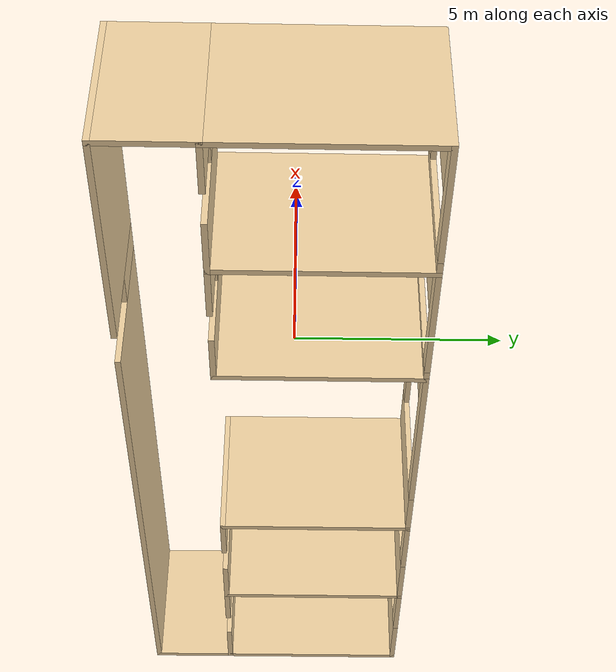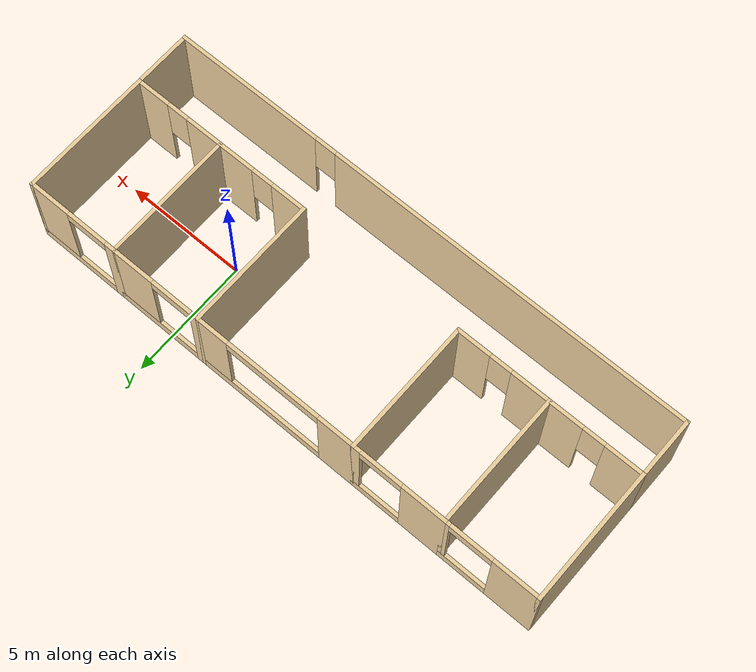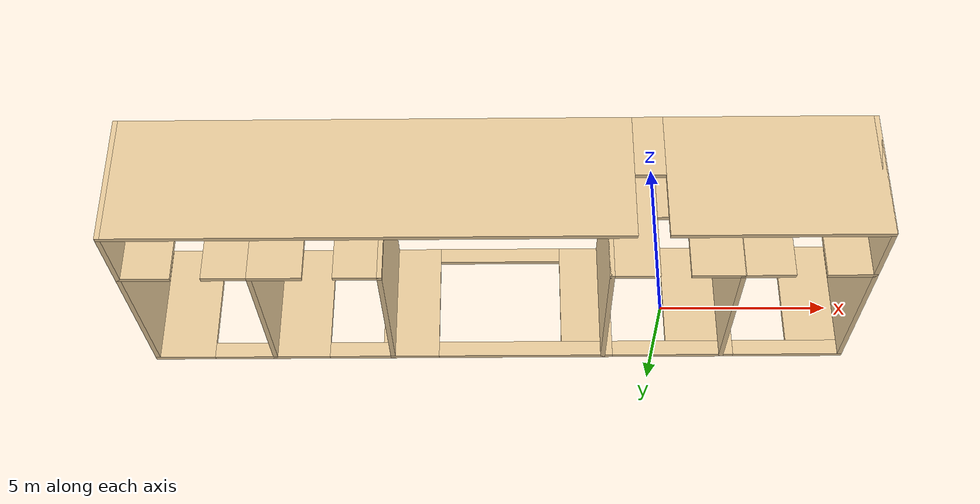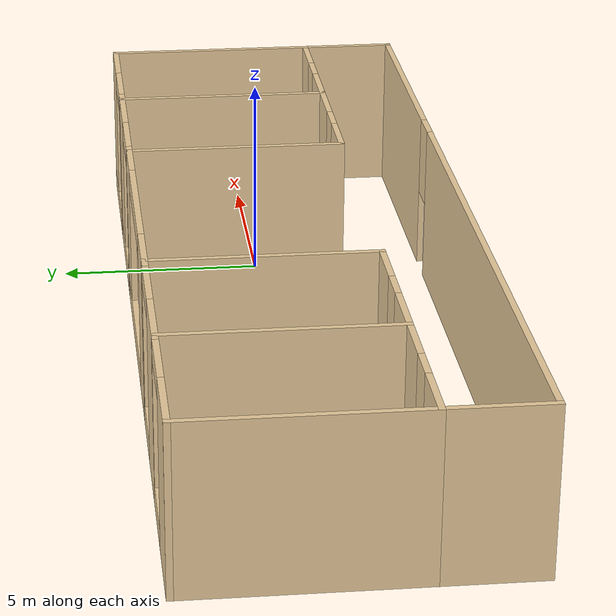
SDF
<?xml version='1.0'?>
<sdf version='1.6'>
  <model name='Building'>
    <pose frame=''>-4.995 -0.531 0 0 -0 0</pose>
    <link name='Wall_10'>
      <pose frame=''>-9.2 -1.5 0 0 -0 0</pose>
      <visual name='Wall_10_Visual_0'>
        <pose frame=''>-1.19629 0 2 0 -0 0</pose>
        <geometry>
          <box>
            <size>1.60742 0.15 4</size>
          </box>
        </geometry>
        <material>
          <script>
            <uri>file://media/materials/scripts/gazebo.material</uri>
            <name>Gazebo/Grey</name>
          </script>
          <ambient>0.921569 0.807843 0.615686 1</ambient>
        </material>
        <meta>
          <layer>0</layer>
        </meta>
      </visual>
      <collision name='Wall_10_Collision_0'>
        <geometry>
          <box>
            <size>1.60742 0.15 4</size>
          </box>
        </geometry>
        <pose frame=''>-1.19629 0 2 0 -0 0</pose>
      </collision>
      <visual name='Wall_10_Visual_1'>
        <pose frame=''>1.25371 0 2 0 -0 0</pose>
        <geometry>
          <box>
            <size>1.49258 0.15 4</size>
          </box>
        </geometry>
        <material>
          <script>
            <uri>file://media/materials/scripts/gazebo.material</uri>
            <name>Gazebo/Grey</name>
          </script>
          <ambient>0.921569 0.807843 0.615686 1</ambient>
        </material>
        <meta>
          <layer>0</layer>
        </meta>
      </visual>
      <collision name='Wall_10_Collision_1'>
        <geometry>
          <box>
            <size>1.49258 0.15 4</size>
          </box>
        </geometry>
        <pose frame=''>1.25371 0 2 0 -0 0</pose>
      </collision>
      <visual name='Wall_10_Visual_2'>
        <pose frame=''>0.05742 0 3 0 -0 0</pose>
        <geometry>
          <box>
            <size>0.9 0.15 2</size>
          </box>
        </geometry>
        <material>
          <script>
            <uri>file://media/materials/scripts/gazebo.material</uri>
            <name>Gazebo/Grey</name>
          </script>
          <ambient>0.921569 0.807843 0.615686 1</ambient>
        </material>
        <meta>
          <layer>0</layer>
        </meta>
      </visual>
      <collision name='Wall_10_Collision_2'>
        <geometry>
          <box>
            <size>0.9 0.15 2</size>
          </box>
        </geometry>
        <pose frame=''>0.05742 0 3 0 -0 0</pose>
      </collision>
    </link>
    <link name='Wall_12'>
      <pose frame=''>-5.35 3.85 0 0 -0 0</pose>
      <visual name='Wall_12_Visual_0'>
        <pose frame=''>-1.06828 0 2 0 -0 0</pose>
        <geometry>
          <box>
            <size>1.86345 0.15 4</size>
          </box>
        </geometry>
        <material>
          <script>
            <uri>file://media/materials/scripts/gazebo.material</uri>
            <name>Gazebo/Grey</name>
          </script>
          <ambient>0.921569 0.807843 0.615686 1</ambient>
        </material>
        <meta>
          <layer>0</layer>
        </meta>
      </visual>
      <collision name='Wall_12_Collision_0'>
        <geometry>
          <box>
            <size>1.86345 0.15 4</size>
          </box>
        </geometry>
        <pose frame=''>-1.06828 0 2 0 -0 0</pose>
      </collision>
      <visual name='Wall_12_Visual_1'>
        <pose frame=''>0.931723 0 0.25 0 -0 0</pose>
        <geometry>
          <box>
            <size>2.13655 0.15 0.5</size>
          </box>
        </geometry>
        <material>
          <script>
            <uri>file://media/materials/scripts/gazebo.material</uri>
            <name>Gazebo/Grey</name>
          </script>
          <ambient>0.921569 0.807843 0.615686 1</ambient>
        </material>
        <meta>
          <layer>0</layer>
        </meta>
      </visual>
      <collision name='Wall_12_Collision_1'>
        <geometry>
          <box>
            <size>2.13655 0.15 0.5</size>
          </box>
        </geometry>
        <pose frame=''>0.931723 0 0.25 0 -0 0</pose>
      </collision>
      <visual name='Wall_12_Visual_2'>
        <pose frame=''>1.80672 0 2.25 0 -0 0</pose>
        <geometry>
          <box>
            <size>0.386555 0.15 3.5</size>
          </box>
        </geometry>
        <material>
          <script>
            <uri>file://media/materials/scripts/gazebo.material</uri>
            <name>Gazebo/Grey</name>
          </script>
          <ambient>0.921569 0.807843 0.615686 1</ambient>
        </material>
        <meta>
          <layer>0</layer>
        </meta>
      </visual>
      <collision name='Wall_12_Collision_2'>
        <geometry>
          <box>
            <size>0.386555 0.15 3.5</size>
          </box>
        </geometry>
        <pose frame=''>1.80672 0 2.25 0 -0 0</pose>
      </collision>
      <visual name='Wall_12_Visual_3'>
        <pose frame=''>0.738445 0 3.75 0 -0 0</pose>
        <geometry>
          <box>
            <size>1.75 0.15 0.5</size>
          </box>
        </geometry>
        <material>
          <script>
            <uri>file://media/materials/scripts/gazebo.material</uri>
            <name>Gazebo/Grey</name>
          </script>
          <ambient>0.921569 0.807843 0.615686 1</ambient>
        </material>
        <meta>
          <layer>0</layer>
        </meta>
      </visual>
      <collision name='Wall_12_Collision_3'>
        <geometry>
          <box>
            <size>1.75 0.15 0.5</size>
          </box>
        </geometry>
        <pose frame=''>0.738445 0 3.75 0 -0 0</pose>
      </collision>
    </link>
    <link name='Wall_14'>
      <collision name='Wall_14_Collision'>
        <geometry>
          <box>
            <size>5.5 0.15 4</size>
          </box>
        </geometry>
        <pose frame=''>0 0 2 0 -0 0</pose>
      </collision>
      <visual name='Wall_14_Visual'>
        <pose frame=''>0 0 2 0 -0 0</pose>
        <geometry>
          <box>
            <size>5.5 0.15 4</size>
          </box>
        </geometry>
        <material>
          <script>
            <uri>file://media/materials/scripts/gazebo.material</uri>
            <name>Gazebo/Grey</name>
          </script>
          <ambient>0.921569 0.807843 0.615686 1</ambient>
        </material>
        <meta>
          <layer>0</layer>
        </meta>
      </visual>
      <pose frame=''>-3.425 1.175 0 0 0 -1.5708</pose>
    </link>
    <link name='Wall_16'>
      <pose frame=''>-5.35 -1.5 0 0 -0 0</pose>
      <visual name='Wall_16_Visual_0'>
        <pose frame=''>-1.17942 0 2 0 -0 0</pose>
        <geometry>
          <box>
            <size>1.64116 0.15 4</size>
          </box>
        </geometry>
        <material>
          <script>
            <uri>file://media/materials/scripts/gazebo.material</uri>
            <name>Gazebo/Grey</name>
          </script>
          <ambient>0.921569 0.807843 0.615686 1</ambient>
        </material>
        <meta>
          <layer>0</layer>
        </meta>
      </visual>
      <collision name='Wall_16_Collision_0'>
        <geometry>
          <box>
            <size>1.64116 0.15 4</size>
          </box>
        </geometry>
        <pose frame=''>-1.17942 0 2 0 -0 0</pose>
      </collision>
      <visual name='Wall_16_Visual_1'>
        <pose frame=''>1.27058 0 2 0 -0 0</pose>
        <geometry>
          <box>
            <size>1.45884 0.15 4</size>
          </box>
        </geometry>
        <material>
          <script>
            <uri>file://media/materials/scripts/gazebo.material</uri>
            <name>Gazebo/Grey</name>
          </script>
          <ambient>0.921569 0.807843 0.615686 1</ambient>
        </material>
        <meta>
          <layer>0</layer>
        </meta>
      </visual>
      <collision name='Wall_16_Collision_1'>
        <geometry>
          <box>
            <size>1.45884 0.15 4</size>
          </box>
        </geometry>
        <pose frame=''>1.27058 0 2 0 -0 0</pose>
      </collision>
      <visual name='Wall_16_Visual_2'>
        <pose frame=''>0.091156 0 3 0 -0 0</pose>
        <geometry>
          <box>
            <size>0.9 0.15 2</size>
          </box>
        </geometry>
        <material>
          <script>
            <uri>file://media/materials/scripts/gazebo.material</uri>
            <name>Gazebo/Grey</name>
          </script>
          <ambient>0.921569 0.807843 0.615686 1</ambient>
        </material>
        <meta>
          <layer>0</layer>
        </meta>
      </visual>
      <collision name='Wall_16_Collision_2'>
        <geometry>
          <box>
            <size>0.9 0.15 2</size>
          </box>
        </geometry>
        <pose frame=''>0.091156 0 3 0 -0 0</pose>
      </collision>
    </link>
    <link name='Wall_18'>
      <pose frame=''>1e-06 3.85 0 0 -0 0</pose>
      <visual name='Wall_18_Visual_0'>
        <pose frame=''>-2.70935 0 2 0 -0 0</pose>
        <geometry>
          <box>
            <size>1.58129 0.15 4</size>
          </box>
        </geometry>
        <material>
          <script>
            <uri>file://media/materials/scripts/gazebo.material</uri>
            <name>Gazebo/Grey</name>
          </script>
          <ambient>0.921569 0.807843 0.615686 1</ambient>
        </material>
        <meta>
          <layer>0</layer>
        </meta>
      </visual>
      <collision name='Wall_18_Collision_0'>
        <geometry>
          <box>
            <size>1.58129 0.15 4</size>
          </box>
        </geometry>
        <pose frame=''>-2.70935 0 2 0 -0 0</pose>
      </collision>
      <visual name='Wall_18_Visual_1'>
        <pose frame=''>0.790646 0 0.25 0 -0 0</pose>
        <geometry>
          <box>
            <size>5.41871 0.15 0.5</size>
          </box>
        </geometry>
        <material>
          <script>
            <uri>file://media/materials/scripts/gazebo.material</uri>
            <name>Gazebo/Grey</name>
          </script>
          <ambient>0.921569 0.807843 0.615686 1</ambient>
        </material>
        <meta>
          <layer>0</layer>
        </meta>
      </visual>
      <collision name='Wall_18_Collision_1'>
        <geometry>
          <box>
            <size>5.41871 0.15 0.5</size>
          </box>
        </geometry>
        <pose frame=''>0.790646 0 0.25 0 -0 0</pose>
      </collision>
      <visual name='Wall_18_Visual_2'>
        <pose frame=''>2.79065 0 2.25 0 -0 0</pose>
        <geometry>
          <box>
            <size>1.41871 0.15 3.5</size>
          </box>
        </geometry>
        <material>
          <script>
            <uri>file://media/materials/scripts/gazebo.material</uri>
            <name>Gazebo/Grey</name>
          </script>
          <ambient>0.921569 0.807843 0.615686 1</ambient>
        </material>
        <meta>
          <layer>0</layer>
        </meta>
      </visual>
      <collision name='Wall_18_Collision_2'>
        <geometry>
          <box>
            <size>1.41871 0.15 3.5</size>
          </box>
        </geometry>
        <pose frame=''>2.79065 0 2.25 0 -0 0</pose>
      </collision>
      <visual name='Wall_18_Visual_3'>
        <pose frame=''>0.081292 0 3.75 0 -0 0</pose>
        <geometry>
          <box>
            <size>4 0.15 0.5</size>
          </box>
        </geometry>
        <material>
          <script>
            <uri>file://media/materials/scripts/gazebo.material</uri>
            <name>Gazebo/Grey</name>
          </script>
          <ambient>0.921569 0.807843 0.615686 1</ambient>
        </material>
        <meta>
          <layer>0</layer>
        </meta>
      </visual>
      <collision name='Wall_18_Collision_3'>
        <geometry>
          <box>
            <size>4 0.15 0.5</size>
          </box>
        </geometry>
        <pose frame=''>0.081292 0 3.75 0 -0 0</pose>
      </collision>
    </link>
    <link name='Wall_20'>
      <collision name='Wall_20_Collision'>
        <geometry>
          <box>
            <size>5.5 0.15 4</size>
          </box>
        </geometry>
        <pose frame=''>0 0 2 0 -0 0</pose>
      </collision>
      <visual name='Wall_20_Visual'>
        <pose frame=''>0 0 2 0 -0 0</pose>
        <geometry>
          <box>
            <size>5.5 0.15 4</size>
          </box>
        </geometry>
        <material>
          <script>
            <uri>file://media/materials/scripts/gazebo.material</uri>
            <name>Gazebo/Grey</name>
          </script>
          <ambient>0.921569 0.807843 0.615686 1</ambient>
        </material>
        <meta>
          <layer>0</layer>
        </meta>
      </visual>
      <pose frame=''>3.425 1.175 0 0 0 -1.5708</pose>
    </link>
    <link name='Wall_22'>
      <pose frame=''>5.35 3.85 0 0 -0 0</pose>
      <visual name='Wall_22_Visual_0'>
        <pose frame=''>-1.80634 0 2 0 -0 0</pose>
        <geometry>
          <box>
            <size>0.387317 0.15 4</size>
          </box>
        </geometry>
        <material>
          <script>
            <uri>file://media/materials/scripts/gazebo.material</uri>
            <name>Gazebo/Grey</name>
          </script>
          <ambient>0.921569 0.807843 0.615686 1</ambient>
        </material>
        <meta>
          <layer>0</layer>
        </meta>
      </visual>
      <collision name='Wall_22_Collision_0'>
        <geometry>
          <box>
            <size>0.387317 0.15 4</size>
          </box>
        </geometry>
        <pose frame=''>-1.80634 0 2 0 -0 0</pose>
      </collision>
      <visual name='Wall_22_Visual_1'>
        <pose frame=''>0.193658 0 0.25 0 -0 0</pose>
        <geometry>
          <box>
            <size>3.61268 0.15 0.5</size>
          </box>
        </geometry>
        <material>
          <script>
            <uri>file://media/materials/scripts/gazebo.material</uri>
            <name>Gazebo/Grey</name>
          </script>
          <ambient>0.921569 0.807843 0.615686 1</ambient>
        </material>
        <meta>
          <layer>0</layer>
        </meta>
      </visual>
      <collision name='Wall_22_Collision_1'>
        <geometry>
          <box>
            <size>3.61268 0.15 0.5</size>
          </box>
        </geometry>
        <pose frame=''>0.193658 0 0.25 0 -0 0</pose>
      </collision>
      <visual name='Wall_22_Visual_2'>
        <pose frame=''>1.06866 0 2.25 0 -0 0</pose>
        <geometry>
          <box>
            <size>1.86268 0.15 3.5</size>
          </box>
        </geometry>
        <material>
          <script>
            <uri>file://media/materials/scripts/gazebo.material</uri>
            <name>Gazebo/Grey</name>
          </script>
          <ambient>0.921569 0.807843 0.615686 1</ambient>
        </material>
        <meta>
          <layer>0</layer>
        </meta>
      </visual>
      <collision name='Wall_22_Collision_2'>
        <geometry>
          <box>
            <size>1.86268 0.15 3.5</size>
          </box>
        </geometry>
        <pose frame=''>1.06866 0 2.25 0 -0 0</pose>
      </collision>
      <visual name='Wall_22_Visual_3'>
        <pose frame=''>-0.737683 0 3.75 0 -0 0</pose>
        <geometry>
          <box>
            <size>1.75 0.15 0.5</size>
          </box>
        </geometry>
        <material>
          <script>
            <uri>file://media/materials/scripts/gazebo.material</uri>
            <name>Gazebo/Grey</name>
          </script>
          <ambient>0.921569 0.807843 0.615686 1</ambient>
        </material>
        <meta>
          <layer>0</layer>
        </meta>
      </visual>
      <collision name='Wall_22_Collision_3'>
        <geometry>
          <box>
            <size>1.75 0.15 0.5</size>
          </box>
        </geometry>
        <pose frame=''>-0.737683 0 3.75 0 -0 0</pose>
      </collision>
    </link>
    <link name='Wall_24'>
      <collision name='Wall_24_Collision'>
        <geometry>
          <box>
            <size>5.5 0.15 4</size>
          </box>
        </geometry>
        <pose frame=''>0 0 2 0 -0 0</pose>
      </collision>
      <visual name='Wall_24_Visual'>
        <pose frame=''>0 0 2 0 -0 0</pose>
        <geometry>
          <box>
            <size>5.5 0.15 4</size>
          </box>
        </geometry>
        <material>
          <script>
            <uri>file://media/materials/scripts/gazebo.material</uri>
            <name>Gazebo/Grey</name>
          </script>
          <ambient>0.921569 0.807843 0.615686 1</ambient>
        </material>
        <meta>
          <layer>0</layer>
        </meta>
      </visual>
      <pose frame=''>7.275 1.175 0 0 0 -1.5708</pose>
    </link>
    <link name='Wall_26'>
      <pose frame=''>5.35 -1.5 0 0 -0 0</pose>
      <visual name='Wall_26_Visual_0'>
        <pose frame=''>-1.24997 0 2 0 -0 0</pose>
        <geometry>
          <box>
            <size>1.50006 0.15 4</size>
          </box>
        </geometry>
        <material>
          <script>
            <uri>file://media/materials/scripts/gazebo.material</uri>
            <name>Gazebo/Grey</name>
          </script>
          <ambient>0.921569 0.807843 0.615686 1</ambient>
        </material>
        <meta>
          <layer>0</layer>
        </meta>
      </visual>
      <collision name='Wall_26_Collision_0'>
        <geometry>
          <box>
            <size>1.50006 0.15 4</size>
          </box>
        </geometry>
        <pose frame=''>-1.24997 0 2 0 -0 0</pose>
      </collision>
      <visual name='Wall_26_Visual_1'>
        <pose frame=''>1.20003 0 2 0 -0 0</pose>
        <geometry>
          <box>
            <size>1.59994 0.15 4</size>
          </box>
        </geometry>
        <material>
          <script>
            <uri>file://media/materials/scripts/gazebo.material</uri>
            <name>Gazebo/Grey</name>
          </script>
          <ambient>0.921569 0.807843 0.615686 1</ambient>
        </material>
        <meta>
          <layer>0</layer>
        </meta>
      </visual>
      <collision name='Wall_26_Collision_1'>
        <geometry>
          <box>
            <size>1.59994 0.15 4</size>
          </box>
        </geometry>
        <pose frame=''>1.20003 0 2 0 -0 0</pose>
      </collision>
      <visual name='Wall_26_Visual_2'>
        <pose frame=''>-0.049939 0 3 0 -0 0</pose>
        <geometry>
          <box>
            <size>0.9 0.15 2</size>
          </box>
        </geometry>
        <material>
          <script>
            <uri>file://media/materials/scripts/gazebo.material</uri>
            <name>Gazebo/Grey</name>
          </script>
          <ambient>0.921569 0.807843 0.615686 1</ambient>
        </material>
        <meta>
          <layer>0</layer>
        </meta>
      </visual>
      <collision name='Wall_26_Collision_2'>
        <geometry>
          <box>
            <size>0.9 0.15 2</size>
          </box>
        </geometry>
        <pose frame=''>-0.049939 0 3 0 -0 0</pose>
      </collision>
    </link>
    <link name='Wall_28'>
      <pose frame=''>9.2 3.85 0 0 -0 0</pose>
      <visual name='Wall_28_Visual_0'>
        <pose frame=''>-1.76925 0 2 0 -0 0</pose>
        <geometry>
          <box>
            <size>0.461508 0.15 4</size>
          </box>
        </geometry>
        <material>
          <script>
            <uri>file://media/materials/scripts/gazebo.material</uri>
            <name>Gazebo/Grey</name>
          </script>
          <ambient>0.921569 0.807843 0.615686 1</ambient>
        </material>
        <meta>
          <layer>0</layer>
        </meta>
      </visual>
      <collision name='Wall_28_Collision_0'>
        <geometry>
          <box>
            <size>0.461508 0.15 4</size>
          </box>
        </geometry>
        <pose frame=''>-1.76925 0 2 0 -0 0</pose>
      </collision>
      <visual name='Wall_28_Visual_1'>
        <pose frame=''>0.230754 0 0.25 0 -0 0</pose>
        <geometry>
          <box>
            <size>3.53849 0.15 0.5</size>
          </box>
        </geometry>
        <material>
          <script>
            <uri>file://media/materials/scripts/gazebo.material</uri>
            <name>Gazebo/Grey</name>
          </script>
          <ambient>0.921569 0.807843 0.615686 1</ambient>
        </material>
        <meta>
          <layer>0</layer>
        </meta>
      </visual>
      <collision name='Wall_28_Collision_1'>
        <geometry>
          <box>
            <size>3.53849 0.15 0.5</size>
          </box>
        </geometry>
        <pose frame=''>0.230754 0 0.25 0 -0 0</pose>
      </collision>
      <visual name='Wall_28_Visual_2'>
        <pose frame=''>1.10575 0 2.25 0 -0 0</pose>
        <geometry>
          <box>
            <size>1.78849 0.15 3.5</size>
          </box>
        </geometry>
        <material>
          <script>
            <uri>file://media/materials/scripts/gazebo.material</uri>
            <name>Gazebo/Grey</name>
          </script>
          <ambient>0.921569 0.807843 0.615686 1</ambient>
        </material>
        <meta>
          <layer>0</layer>
        </meta>
      </visual>
      <collision name='Wall_28_Collision_2'>
        <geometry>
          <box>
            <size>1.78849 0.15 3.5</size>
          </box>
        </geometry>
        <pose frame=''>1.10575 0 2.25 0 -0 0</pose>
      </collision>
      <visual name='Wall_28_Visual_3'>
        <pose frame=''>-0.663492 0 3.75 0 -0 0</pose>
        <geometry>
          <box>
            <size>1.75 0.15 0.5</size>
          </box>
        </geometry>
        <material>
          <script>
            <uri>file://media/materials/scripts/gazebo.material</uri>
            <name>Gazebo/Grey</name>
          </script>
          <ambient>0.921569 0.807843 0.615686 1</ambient>
        </material>
        <meta>
          <layer>0</layer>
        </meta>
      </visual>
      <collision name='Wall_28_Collision_3'>
        <geometry>
          <box>
            <size>1.75 0.15 0.5</size>
          </box>
        </geometry>
        <pose frame=''>-0.663492 0 3.75 0 -0 0</pose>
      </collision>
    </link>
    <link name='Wall_30'>
      <collision name='Wall_30_Collision'>
        <geometry>
          <box>
            <size>5.5 0.15 4</size>
          </box>
        </geometry>
        <pose frame=''>0 0 2 0 -0 0</pose>
      </collision>
      <visual name='Wall_30_Visual'>
        <pose frame=''>0 0 2 0 -0 0</pose>
        <geometry>
          <box>
            <size>5.5 0.15 4</size>
          </box>
        </geometry>
        <material>
          <script>
            <uri>file://media/materials/scripts/gazebo.material</uri>
            <name>Gazebo/Grey</name>
          </script>
          <ambient>0.921569 0.807843 0.615686 1</ambient>
        </material>
        <meta>
          <layer>0</layer>
        </meta>
      </visual>
      <pose frame=''>11.125 1.175 0 0 0 -1.5708</pose>
    </link>
    <link name='Wall_32'>
      <pose frame=''>9.2 -1.5 0 0 -0 0</pose>
      <visual name='Wall_32_Visual_0'>
        <pose frame=''>-1.19265 0 2 0 -0 0</pose>
        <geometry>
          <box>
            <size>1.61471 0.15 4</size>
          </box>
        </geometry>
        <material>
          <script>
            <uri>file://media/materials/scripts/gazebo.material</uri>
            <name>Gazebo/Grey</name>
          </script>
          <ambient>0.921569 0.807843 0.615686 1</ambient>
        </material>
        <meta>
          <layer>0</layer>
        </meta>
      </visual>
      <collision name='Wall_32_Collision_0'>
        <geometry>
          <box>
            <size>1.61471 0.15 4</size>
          </box>
        </geometry>
        <pose frame=''>-1.19265 0 2 0 -0 0</pose>
      </collision>
      <visual name='Wall_32_Visual_1'>
        <pose frame=''>1.25735 0 2 0 -0 0</pose>
        <geometry>
          <box>
            <size>1.48529 0.15 4</size>
          </box>
        </geometry>
        <material>
          <script>
            <uri>file://media/materials/scripts/gazebo.material</uri>
            <name>Gazebo/Grey</name>
          </script>
          <ambient>0.921569 0.807843 0.615686 1</ambient>
        </material>
        <meta>
          <layer>0</layer>
        </meta>
      </visual>
      <collision name='Wall_32_Collision_1'>
        <geometry>
          <box>
            <size>1.48529 0.15 4</size>
          </box>
        </geometry>
        <pose frame=''>1.25735 0 2 0 -0 0</pose>
      </collision>
      <visual name='Wall_32_Visual_2'>
        <pose frame=''>0.064708 0 3 0 -0 0</pose>
        <geometry>
          <box>
            <size>0.9 0.15 2</size>
          </box>
        </geometry>
        <material>
          <script>
            <uri>file://media/materials/scripts/gazebo.material</uri>
            <name>Gazebo/Grey</name>
          </script>
          <ambient>0.921569 0.807843 0.615686 1</ambient>
        </material>
        <meta>
          <layer>0</layer>
        </meta>
      </visual>
      <collision name='Wall_32_Collision_2'>
        <geometry>
          <box>
            <size>0.9 0.15 2</size>
          </box>
        </geometry>
        <pose frame=''>0.064708 0 3 0 -0 0</pose>
      </collision>
    </link>
    <link name='Wall_4'>
      <collision name='Wall_4_Collision'>
        <geometry>
          <box>
            <size>5.5 0.15 4</size>
          </box>
        </geometry>
        <pose frame=''>0 0 2 0 -0 0</pose>
      </collision>
      <visual name='Wall_4_Visual'>
        <pose frame=''>0 0 2 0 -0 0</pose>
        <geometry>
          <box>
            <size>5.5 0.15 4</size>
          </box>
        </geometry>
        <material>
          <script>
            <uri>file://media/materials/scripts/gazebo.material</uri>
            <name>Gazebo/Grey</name>
          </script>
          <ambient>0.921569 0.807843 0.615686 1</ambient>
        </material>
        <meta>
          <layer>0</layer>
        </meta>
      </visual>
      <pose frame=''>-11.125 1.175 0 0 0 -1.5708</pose>
    </link>
    <link name='Wall_45'>
      <collision name='Wall_45_Collision'>
        <geometry>
          <box>
            <size>2.5 0.15 4</size>
          </box>
        </geometry>
        <pose frame=''>0 0 2 0 -0 0</pose>
      </collision>
      <visual name='Wall_45_Visual'>
        <pose frame=''>0 0 2 0 -0 0</pose>
        <geometry>
          <box>
            <size>2.5 0.15 4</size>
          </box>
        </geometry>
        <material>
          <script>
            <uri>file://media/materials/scripts/gazebo.material</uri>
            <name>Gazebo/Grey</name>
          </script>
          <ambient>0.921569 0.807843 0.615686 1</ambient>
        </material>
        <meta>
          <layer>0</layer>
        </meta>
      </visual>
      <pose frame=''>-11.125 -2.675 0 0 0 -1.5708</pose>
    </link>
    <link name='Wall_47'>
      <collision name='Wall_47_Collision'>
        <geometry>
          <box>
            <size>2.5 0.15 4</size>
          </box>
        </geometry>
        <pose frame=''>0 0 2 0 -0 0</pose>
      </collision>
      <visual name='Wall_47_Visual'>
        <pose frame=''>0 0 2 0 -0 0</pose>
        <geometry>
          <box>
            <size>2.5 0.15 4</size>
          </box>
        </geometry>
        <material>
          <script>
            <uri>file://media/materials/scripts/gazebo.material</uri>
            <name>Gazebo/Grey</name>
          </script>
          <ambient>0.921569 0.807843 0.615686 1</ambient>
        </material>
        <meta>
          <layer>0</layer>
        </meta>
      </visual>
      <pose frame=''>11.125 -2.675 0 0 0 -1.5708</pose>
    </link>
    <link name='Wall_49'>
      <pose frame=''>1e-06 -3.85 0 0 -0 0</pose>
      <visual name='Wall_49_Visual_0'>
        <pose frame=''>-3.59975 0 2 0 -0 0</pose>
        <geometry>
          <box>
            <size>15.2005 0.15 4</size>
          </box>
        </geometry>
        <material>
          <script>
            <uri>file://media/materials/scripts/gazebo.material</uri>
            <name>Gazebo/Grey</name>
          </script>
          <ambient>0.921569 0.807843 0.615686 1</ambient>
        </material>
        <meta>
          <layer>0</layer>
        </meta>
      </visual>
      <collision name='Wall_49_Collision_0'>
        <geometry>
          <box>
            <size>15.2005 0.15 4</size>
          </box>
        </geometry>
        <pose frame=''>-3.59975 0 2 0 -0 0</pose>
      </collision>
      <visual name='Wall_49_Visual_1'>
        <pose frame=''>8.05025 0 2 0 -0 0</pose>
        <geometry>
          <box>
            <size>6.29951 0.15 4</size>
          </box>
        </geometry>
        <material>
          <script>
            <uri>file://media/materials/scripts/gazebo.material</uri>
            <name>Gazebo/Grey</name>
          </script>
          <ambient>0.921569 0.807843 0.615686 1</ambient>
        </material>
        <meta>
          <layer>0</layer>
        </meta>
      </visual>
      <collision name='Wall_49_Collision_1'>
        <geometry>
          <box>
            <size>6.29951 0.15 4</size>
          </box>
        </geometry>
        <pose frame=''>8.05025 0 2 0 -0 0</pose>
      </collision>
      <visual name='Wall_49_Visual_2'>
        <pose frame=''>4.45049 0 3 0 -0 0</pose>
        <geometry>
          <box>
            <size>0.9 0.15 2</size>
          </box>
        </geometry>
        <material>
          <script>
            <uri>file://media/materials/scripts/gazebo.material</uri>
            <name>Gazebo/Grey</name>
          </script>
          <ambient>0.921569 0.807843 0.615686 1</ambient>
        </material>
        <meta>
          <layer>0</layer>
        </meta>
      </visual>
      <collision name='Wall_49_Collision_2'>
        <geometry>
          <box>
            <size>0.9 0.15 2</size>
          </box>
        </geometry>
        <pose frame=''>4.45049 0 3 0 -0 0</pose>
      </collision>
    </link>
    <link name='Wall_6'>
      <pose frame=''>-9.2 3.85 0 0 -0 0</pose>
      <visual name='Wall_6_Visual_0'>
        <pose frame=''>-1.02446 0 2 0 -0 0</pose>
        <geometry>
          <box>
            <size>1.95108 0.15 4</size>
          </box>
        </geometry>
        <material>
          <script>
            <uri>file://media/materials/scripts/gazebo.material</uri>
            <name>Gazebo/Grey</name>
          </script>
          <ambient>0.921569 0.807843 0.615686 1</ambient>
        </material>
        <meta>
          <layer>0</layer>
        </meta>
      </visual>
      <collision name='Wall_6_Collision_0'>
        <geometry>
          <box>
            <size>1.95108 0.15 4</size>
          </box>
        </geometry>
        <pose frame=''>-1.02446 0 2 0 -0 0</pose>
      </collision>
      <visual name='Wall_6_Visual_1'>
        <pose frame=''>0.975538 0 0.25 0 -0 0</pose>
        <geometry>
          <box>
            <size>2.04892 0.15 0.5</size>
          </box>
        </geometry>
        <material>
          <script>
            <uri>file://media/materials/scripts/gazebo.material</uri>
            <name>Gazebo/Grey</name>
          </script>
          <ambient>0.921569 0.807843 0.615686 1</ambient>
        </material>
        <meta>
          <layer>0</layer>
        </meta>
      </visual>
      <collision name='Wall_6_Collision_1'>
        <geometry>
          <box>
            <size>2.04892 0.15 0.5</size>
          </box>
        </geometry>
        <pose frame=''>0.975538 0 0.25 0 -0 0</pose>
      </collision>
      <visual name='Wall_6_Visual_2'>
        <pose frame=''>1.85054 0 2.25 0 -0 0</pose>
        <geometry>
          <box>
            <size>0.298924 0.15 3.5</size>
          </box>
        </geometry>
        <material>
          <script>
            <uri>file://media/materials/scripts/gazebo.material</uri>
            <name>Gazebo/Grey</name>
          </script>
          <ambient>0.921569 0.807843 0.615686 1</ambient>
        </material>
        <meta>
          <layer>0</layer>
        </meta>
      </visual>
      <collision name='Wall_6_Collision_2'>
        <geometry>
          <box>
            <size>0.298924 0.15 3.5</size>
          </box>
        </geometry>
        <pose frame=''>1.85054 0 2.25 0 -0 0</pose>
      </collision>
      <visual name='Wall_6_Visual_3'>
        <pose frame=''>0.826076 0 3.75 0 -0 0</pose>
        <geometry>
          <box>
            <size>1.75 0.15 0.5</size>
          </box>
        </geometry>
        <material>
          <script>
            <uri>file://media/materials/scripts/gazebo.material</uri>
            <name>Gazebo/Grey</name>
          </script>
          <ambient>0.921569 0.807843 0.615686 1</ambient>
        </material>
        <meta>
          <layer>0</layer>
        </meta>
      </visual>
      <collision name='Wall_6_Collision_3'>
        <geometry>
          <box>
            <size>1.75 0.15 0.5</size>
          </box>
        </geometry>
        <pose frame=''>0.826076 0 3.75 0 -0 0</pose>
      </collision>
    </link>
    <link name='Wall_8'>
      <collision name='Wall_8_Collision'>
        <geometry>
          <box>
            <size>5.5 0.15 4</size>
          </box>
        </geometry>
        <pose frame=''>0 0 2 0 -0 0</pose>
      </collision>
      <visual name='Wall_8_Visual'>
        <pose frame=''>0 0 2 0 -0 0</pose>
        <geometry>
          <box>
            <size>5.5 0.15 4</size>
          </box>
        </geometry>
        <material>
          <script>
            <uri>file://media/materials/scripts/gazebo.material</uri>
            <name>Gazebo/Grey</name>
          </script>
          <ambient>0.921569 0.807843 0.615686 1</ambient>
        </material>
        <meta>
          <layer>0</layer>
        </meta>
      </visual>
      <pose frame=''>-7.275 1.175 0 0 0 -1.5708</pose>
    </link>
    <static>1</static>
  </model>
</sdf>
